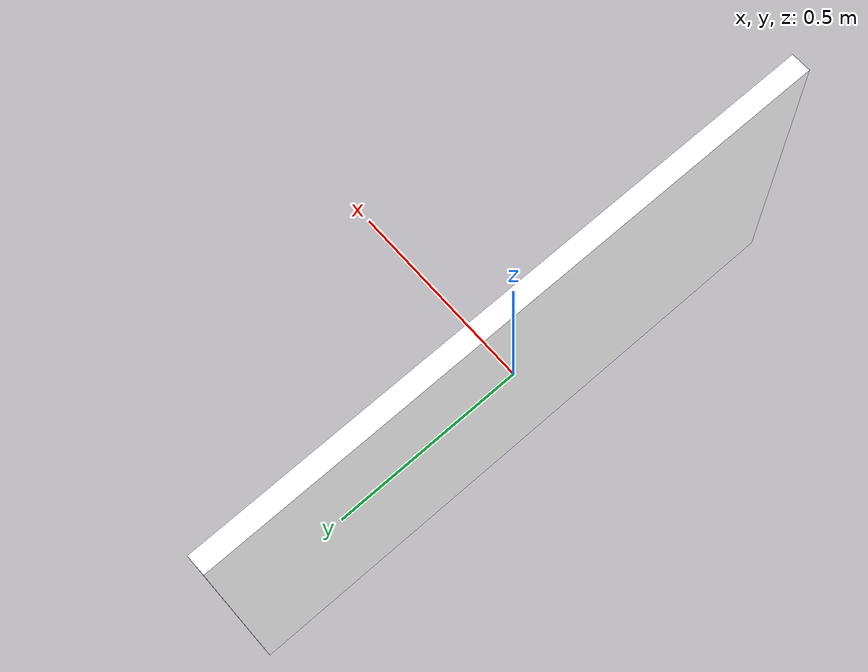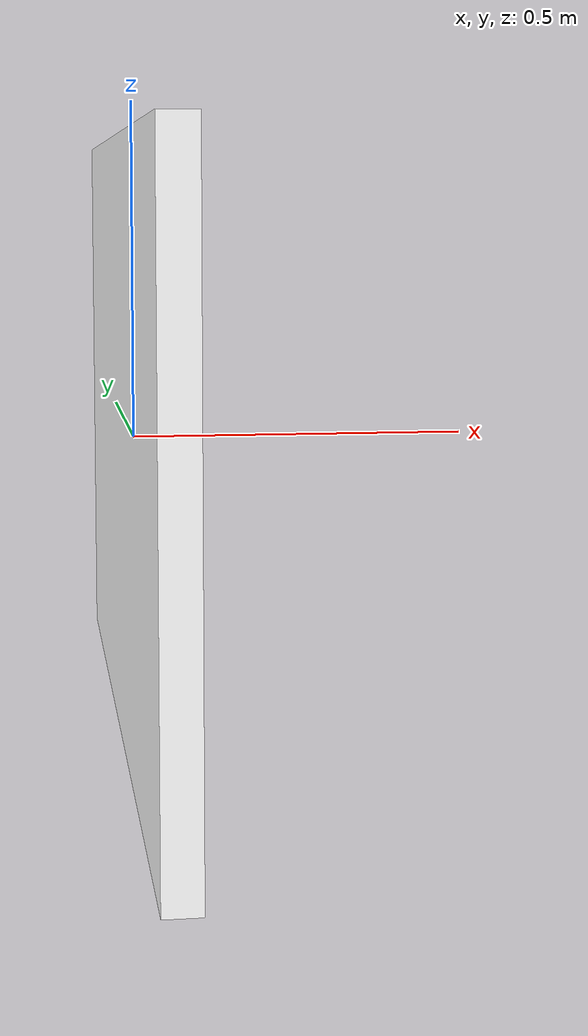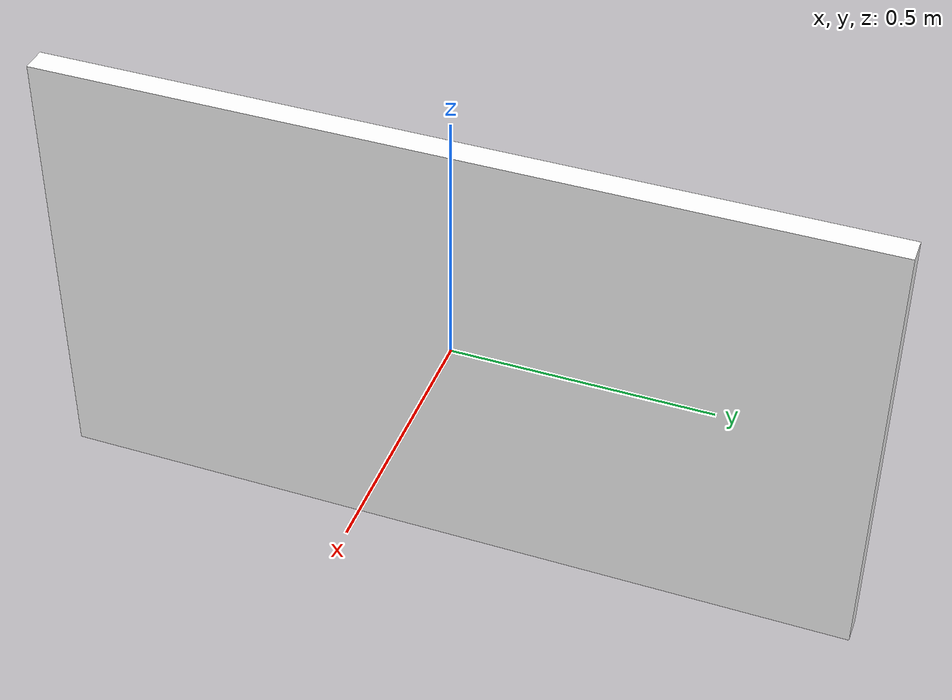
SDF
<?xml version="1.0"?>
<sdf version="1.7">
  <model name="detect_billboard">
    <static>true</static>
    <link name="link">
      <visual name="visual">
        <geometry><box><size>0.05 1.6 0.9</size></box></geometry>
        <material>
          <ambient>1 1 1 1</ambient>
          <diffuse>1 1 1 1</diffuse>
          <pbr>
            <metal>
              <albedo_map>materials/textures/bus.jpg</albedo_map>
              <metalness>0.0</metalness>
              <roughness>1.0</roughness>
            </metal>
          </pbr>
        </material>
      </visual>
      <collision name="collision">
        <geometry><box><size>0.05 1.6 0.9</size></box></geometry>
      </collision>
    </link>
  </model>
</sdf>
